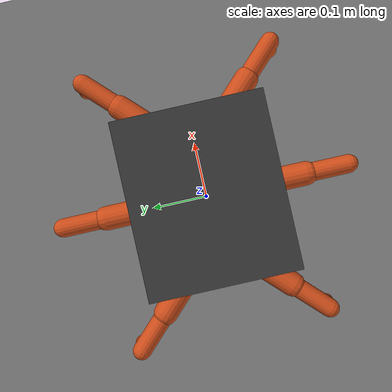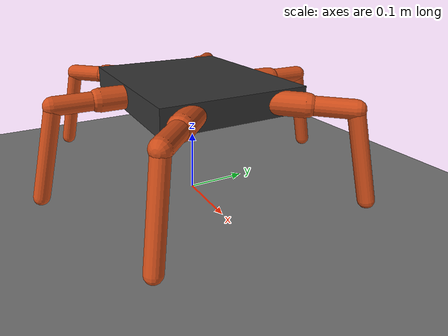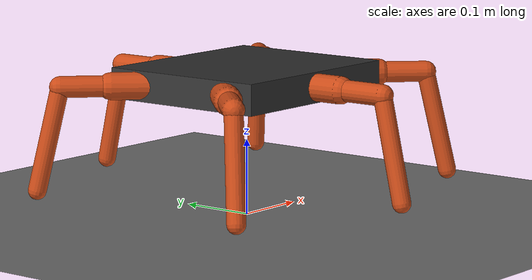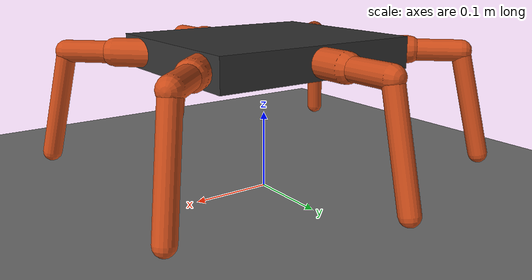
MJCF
<mujoco model="phantomX_simple_mjx">

  <compiler angle="radian"/>

  <option timestep="0.005" gravity="0 0 -9.81" integrator="Euler"
          iterations="20" ls_iterations="10"/>

  <default>
    <joint damping="0.3" armature="0.01" frictionloss="0.01"/>
    <geom condim="3" friction="1.5 0.05 0.05"
          contype="0" conaffinity="0"/>   <!-- default: no collision -->
    <position kp="60" kv="2" ctrllimited="true" ctrlrange="-3.14 3.14"
              forcelimited="true" forcerange="-1.5 1.5"/>
  </default>

  <asset>
    <texture type="skybox" builtin="gradient" rgb1="0.5 0.7 0.9" rgb2="1 1 1" width="512" height="512"/>
    <texture name="floor" type="2d" builtin="checker" rgb1="0.4 0.4 0.4" rgb2="0.5 0.5 0.5" width="512" height="512"/>
    <material name="floor" texture="floor" texrepeat="4 4" reflectance="0.1"/>
  </asset>

  <worldbody>
    <light directional="true" diffuse="0.8 0.8 0.8" specular="0.2 0.2 0.2" pos="0 0 4" dir="0 0 -1"/>
    <!-- Floor: contype=1, conaffinity=2 -- collides with feet (contype=2). -->
    <geom name="floor" type="plane" size="10 10 0.1" material="floor" condim="3"
          contype="1" conaffinity="2"/>

    <body name="base" pos="0 0 0.18">
      <freejoint/>
      <inertial pos="0 0 0" mass="0.5" diaginertia="0.003 0.005 0.006"/>
      <geom name="chassis" type="box" size="0.135 0.115 0.020" rgba="0.2 0.2 0.2 1"/>
      <site name="imu" pos="0 0 0" size="0.005" rgba="0 1 0 0.5"/>

      <!-- Right Rear -->
      <body name="coxa_RR" pos="-0.12 -0.06 0" quat="0.382683 0 0 -0.92388">
        <inertial pos="0.026 0 0" mass="0.05" diaginertia="1e-5 2e-5 2e-5"/>
        <joint name="coxa_joint_RR" axis="0 0 1" range="-1.3500 1.3500"/>
        <geom name="coxa_geom_RR" type="capsule" fromto="0 0 0  0.052 0 0" size="0.018" rgba="0.8 0.3 0.1 1"/>
        <body name="femur_RR" pos="0.052 0 0" quat="0.5 -0.5 0.5 0.5">
          <inertial pos="0 -0.032 0" mass="0.08" diaginertia="3e-5 1e-5 3e-5"/>
          <joint name="femur_joint_RR" axis="0 0 -1" range="-1.8207 1.8243"/>
          <geom name="femur_geom_RR" type="capsule" fromto="0 0 0  0 -0.065 0" size="0.014" rgba="0.8 0.3 0.1 1"/>
          <body name="tibia_RR" pos="0 -0.065 0" quat="0 1 0 0">
            <inertial pos="0 0 -0.05" mass="0.06" diaginertia="2e-5 2e-5 5e-6"/>
            <joint name="tibia_joint_RR" axis="0 0 1" range="-1.1760 1.3592"/>
            <geom name="tibia_geom_RR" type="capsule" fromto="0 0 0  0.134 0.031 0" size="0.012" rgba="0.8 0.3 0.1 1"/>
            <!-- foot: contype=2, conaffinity=1 -- collides with floor only. -->
            <geom name="foot_RR" type="sphere" pos="0.134 0.031 0" size="0.008" rgba="0.1 0.1 0.1 1"
                  contype="2" conaffinity="1"/>
          </body>
        </body>
      </body>

      <!-- Right Middle -->
      <body name="coxa_RM" pos="0 -0.1 0" quat="0.707107 0 0 -0.707107">
        <inertial pos="0.026 0 0" mass="0.05" diaginertia="1e-5 2e-5 2e-5"/>
        <joint name="coxa_joint_RM" axis="0 0 1" range="-0.9000 0.9000"/>
        <geom name="coxa_geom_RM" type="capsule" fromto="0 0 0  0.052 0 0" size="0.018" rgba="0.8 0.3 0.1 1"/>
        <body name="femur_RM" pos="0.052 0 0" quat="0.5 -0.5 0.5 0.5">
          <inertial pos="0 -0.032 0" mass="0.08" diaginertia="3e-5 1e-5 3e-5"/>
          <joint name="femur_joint_RM" axis="0 0 -1" range="-2.0737 2.0753"/>
          <geom name="femur_geom_RM" type="capsule" fromto="0 0 0  0 -0.065 0" size="0.014" rgba="0.8 0.3 0.1 1"/>
          <body name="tibia_RM" pos="0 -0.065 0" quat="0 1 0 0">
            <inertial pos="0 0 -0.05" mass="0.06" diaginertia="2e-5 2e-5 5e-6"/>
            <joint name="tibia_joint_RM" axis="0 0 1" range="-1.1757 1.3592"/>
            <geom name="tibia_geom_RM" type="capsule" fromto="0 0 0  0.134 0.031 0" size="0.012" rgba="0.8 0.3 0.1 1"/>
            <geom name="foot_RM" type="sphere" pos="0.134 0.031 0" size="0.008" rgba="0.1 0.1 0.1 1"
                  contype="2" conaffinity="1"/>
          </body>
        </body>
      </body>

      <!-- Right Front -->
      <body name="coxa_RF" pos="0.12 -0.06 0" quat="0.92388 0 0 -0.382683">
        <inertial pos="0.026 0 0" mass="0.05" diaginertia="1e-5 2e-5 2e-5"/>
        <joint name="coxa_joint_RF" axis="0 0 1" range="-0.9000 0.9000"/>
        <geom name="coxa_geom_RF" type="capsule" fromto="0 0 0  0.052 0 0" size="0.018" rgba="0.8 0.3 0.1 1"/>
        <body name="femur_RF" pos="0.052 0 0" quat="0.5 -0.5 0.5 0.5">
          <inertial pos="0 -0.032 0" mass="0.08" diaginertia="3e-5 1e-5 3e-5"/>
          <joint name="femur_joint_RF" axis="0 0 -1" range="-1.8207 1.8243"/>
          <geom name="femur_geom_RF" type="capsule" fromto="0 0 0  0 -0.065 0" size="0.014" rgba="0.8 0.3 0.1 1"/>
          <body name="tibia_RF" pos="0 -0.065 0" quat="0 1 0 0">
            <inertial pos="0 0 -0.05" mass="0.06" diaginertia="2e-5 2e-5 5e-6"/>
            <joint name="tibia_joint_RF" axis="0 0 1" range="-1.1760 1.3592"/>
            <geom name="tibia_geom_RF" type="capsule" fromto="0 0 0  0.134 0.031 0" size="0.012" rgba="0.8 0.3 0.1 1"/>
            <geom name="foot_RF" type="sphere" pos="0.134 0.031 0" size="0.008" rgba="0.1 0.1 0.1 1"
                  contype="2" conaffinity="1"/>
          </body>
        </body>
      </body>

      <!-- Left Rear -->
      <body name="coxa_LR" pos="-0.12 0.06 0" quat="0.382683 0 0 0.92388">
        <inertial pos="0.026 0 0" mass="0.05" diaginertia="1e-5 2e-5 2e-5"/>
        <joint name="coxa_joint_LR" axis="0 0 1" range="-1.3500 1.3500"/>
        <geom name="coxa_geom_LR" type="capsule" fromto="0 0 0  0.052 0 0" size="0.018" rgba="0.8 0.3 0.1 1"/>
        <body name="femur_LR" pos="0.052 0 0" quat="0.5 -0.5 0.5 0.5">
          <inertial pos="0 -0.032 0" mass="0.08" diaginertia="3e-5 1e-5 3e-5"/>
          <joint name="femur_joint_LR" axis="0 0 1" range="-1.8243 1.8207"/>
          <geom name="femur_geom_LR" type="capsule" fromto="0 0 0  0 -0.065 0" size="0.014" rgba="0.8 0.3 0.1 1"/>
          <body name="tibia_LR" pos="0 -0.065 0" quat="0 1 0 0">
            <inertial pos="0 0 -0.05" mass="0.06" diaginertia="2e-5 2e-5 5e-6"/>
            <joint name="tibia_joint_LR" axis="0 0 -1" range="-1.3592 1.1760"/>
            <geom name="tibia_geom_LR" type="capsule" fromto="0 0 0  0.134 0.031 0" size="0.012" rgba="0.8 0.3 0.1 1"/>
            <geom name="foot_LR" type="sphere" pos="0.134 0.031 0" size="0.008" rgba="0.1 0.1 0.1 1"
                  contype="2" conaffinity="1"/>
          </body>
        </body>
      </body>

      <!-- Left Middle -->
      <body name="coxa_LM" pos="0 0.1 0" quat="0.707107 0 0 0.707107">
        <inertial pos="0.026 0 0" mass="0.05" diaginertia="1e-5 2e-5 2e-5"/>
        <joint name="coxa_joint_LM" axis="0 0 1" range="-0.9000 0.9000"/>
        <geom name="coxa_geom_LM" type="capsule" fromto="0 0 0  0.052 0 0" size="0.018" rgba="0.8 0.3 0.1 1"/>
        <body name="femur_LM" pos="0.052 0 0" quat="0.5 -0.5 0.5 0.5">
          <inertial pos="0 -0.032 0" mass="0.08" diaginertia="3e-5 1e-5 3e-5"/>
          <joint name="femur_joint_LM" axis="0 0 1" range="-2.0753 2.0737"/>
          <geom name="femur_geom_LM" type="capsule" fromto="0 0 0  0 -0.065 0" size="0.014" rgba="0.8 0.3 0.1 1"/>
          <body name="tibia_LM" pos="0 -0.065 0" quat="0 1 0 0">
            <inertial pos="0 0 -0.05" mass="0.06" diaginertia="2e-5 2e-5 5e-6"/>
            <joint name="tibia_joint_LM" axis="0 0 -1" range="-1.3592 1.1757"/>
            <geom name="tibia_geom_LM" type="capsule" fromto="0 0 0  0.134 0.031 0" size="0.012" rgba="0.8 0.3 0.1 1"/>
            <geom name="foot_LM" type="sphere" pos="0.134 0.031 0" size="0.008" rgba="0.1 0.1 0.1 1"
                  contype="2" conaffinity="1"/>
          </body>
        </body>
      </body>

      <!-- Left Front -->
      <body name="coxa_LF" pos="0.12 0.06 0" quat="0.92388 0 0 0.382683">
        <inertial pos="0.026 0 0" mass="0.05" diaginertia="1e-5 2e-5 2e-5"/>
        <joint name="coxa_joint_LF" axis="0 0 1" range="-0.9000 0.9000"/>
        <geom name="coxa_geom_LF" type="capsule" fromto="0 0 0  0.052 0 0" size="0.018" rgba="0.8 0.3 0.1 1"/>
        <body name="femur_LF" pos="0.052 0 0" quat="0.5 -0.5 0.5 0.5">
          <inertial pos="0 -0.032 0" mass="0.08" diaginertia="3e-5 1e-5 3e-5"/>
          <joint name="femur_joint_LF" axis="0 0 1" range="-1.8243 1.8207"/>
          <geom name="femur_geom_LF" type="capsule" fromto="0 0 0  0 -0.065 0" size="0.014" rgba="0.8 0.3 0.1 1"/>
          <body name="tibia_LF" pos="0 -0.065 0" quat="0 1 0 0">
            <inertial pos="0 0 -0.05" mass="0.06" diaginertia="2e-5 2e-5 5e-6"/>
            <joint name="tibia_joint_LF" axis="0 0 -1" range="-1.3592 1.1760"/>
            <geom name="tibia_geom_LF" type="capsule" fromto="0 0 0  0.134 0.031 0" size="0.012" rgba="0.8 0.3 0.1 1"/>
            <geom name="foot_LF" type="sphere" pos="0.134 0.031 0" size="0.008" rgba="0.1 0.1 0.1 1"
                  contype="2" conaffinity="1"/>
          </body>
        </body>
      </body>

    </body>
  </worldbody>

  <actuator>
    <position name="coxa_RR"  joint="coxa_joint_RR"  ctrlrange="-1.3500 1.3500"/>
    <position name="femur_RR" joint="femur_joint_RR" ctrlrange="-1.8207 1.8243"/>
    <position name="tibia_RR" joint="tibia_joint_RR" ctrlrange="-1.1760 1.3592"/>
    <position name="coxa_RM"  joint="coxa_joint_RM"  ctrlrange="-0.9000 0.9000"/>
    <position name="femur_RM" joint="femur_joint_RM" ctrlrange="-2.0737 2.0753"/>
    <position name="tibia_RM" joint="tibia_joint_RM" ctrlrange="-1.1757 1.3592"/>
    <position name="coxa_RF"  joint="coxa_joint_RF"  ctrlrange="-0.9000 0.9000"/>
    <position name="femur_RF" joint="femur_joint_RF" ctrlrange="-1.8207 1.8243"/>
    <position name="tibia_RF" joint="tibia_joint_RF" ctrlrange="-1.1760 1.3592"/>
    <position name="coxa_LR"  joint="coxa_joint_LR"  ctrlrange="-1.3500 1.3500"/>
    <position name="femur_LR" joint="femur_joint_LR" ctrlrange="-1.8243 1.8207"/>
    <position name="tibia_LR" joint="tibia_joint_LR" ctrlrange="-1.3592 1.1760"/>
    <position name="coxa_LM"  joint="coxa_joint_LM"  ctrlrange="-0.9000 0.9000"/>
    <position name="femur_LM" joint="femur_joint_LM" ctrlrange="-2.0753 2.0737"/>
    <position name="tibia_LM" joint="tibia_joint_LM" ctrlrange="-1.3592 1.1757"/>
    <position name="coxa_LF"  joint="coxa_joint_LF"  ctrlrange="-0.9000 0.9000"/>
    <position name="femur_LF" joint="femur_joint_LF" ctrlrange="-1.8243 1.8207"/>
    <position name="tibia_LF" joint="tibia_joint_LF" ctrlrange="-1.3592 1.1760"/>
  </actuator>

  <sensor>
    <accelerometer site="imu" name="imu_acc"/>
    <gyro          site="imu" name="imu_gyro"/>
    <framequat     objtype="site" objname="imu" name="imu_quat"/>
  </sensor>

</mujoco>
